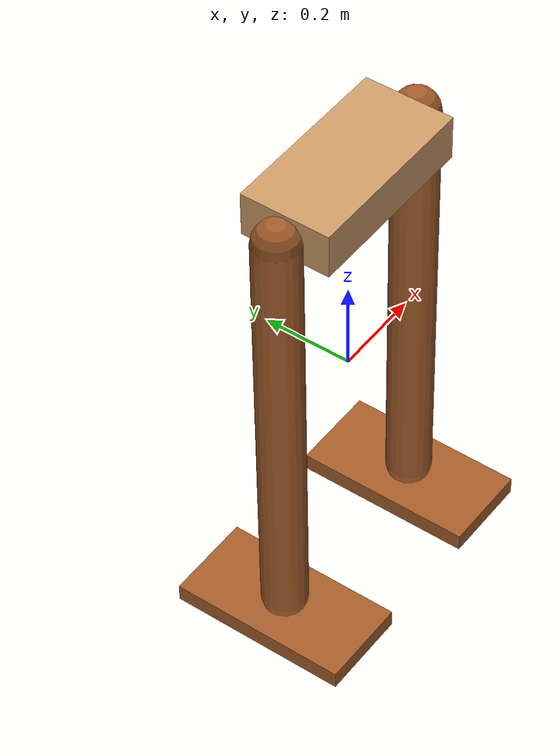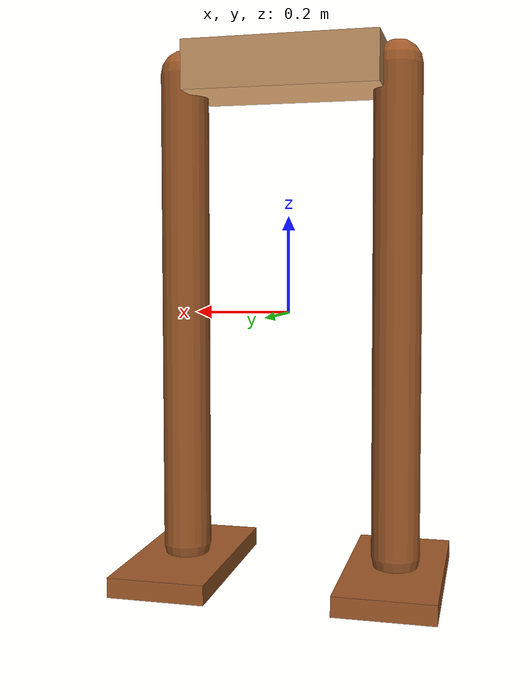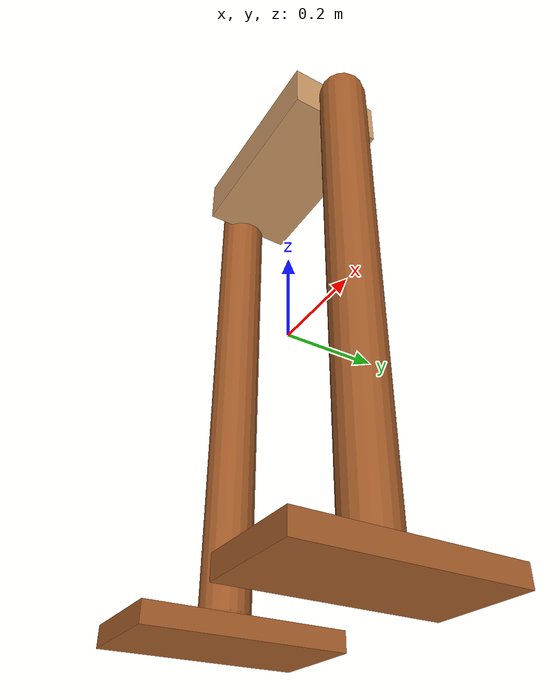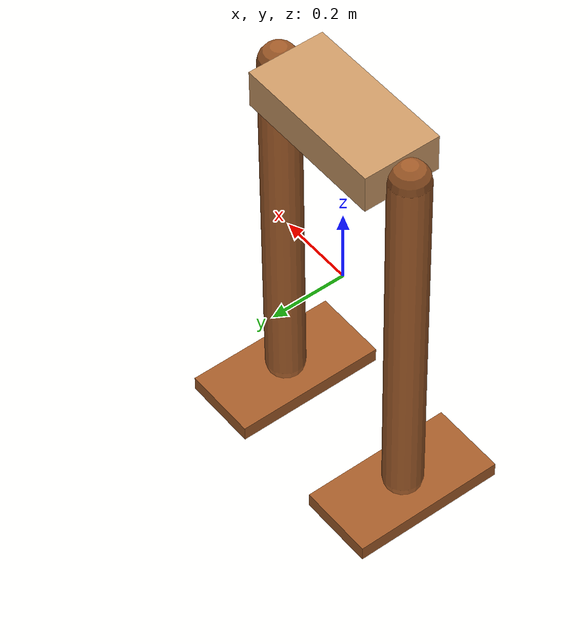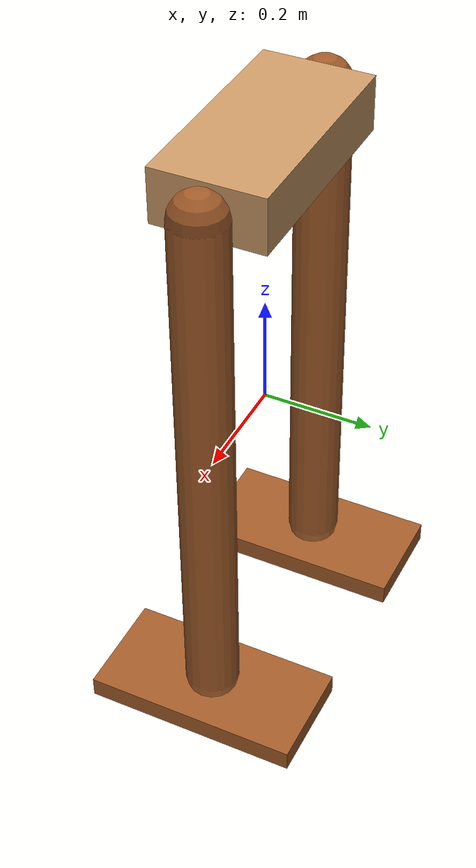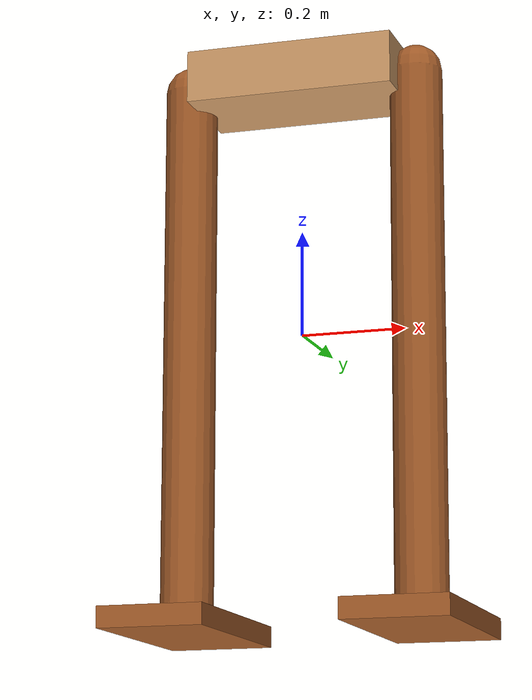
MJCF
<mujoco model="frog">
    <compiler angle="degree"/>

    <default>
        <joint limited="true" damping="1" armature="0"/>
        <geom condim="1" material="matgeom"/>
        <motor ctrlrange="-.4 .4" ctrllimited="true"/>
    </default>

    <option timestep="0.005" iterations="50" tolerance="1e-10" solver="Newton" jacobian="dense" cone="pyramidal" gravity="0 0 0"/>

    <size nconmax="50" njmax="200" nstack="10000"/>

    <visual>
        <map force="0.1" zfar="30"/>
        <rgba haze="0.15 0.25 0.35 1"/>
        <quality shadowsize="2048"/>
        <global offwidth="800" offheight="800"/>
    </visual>

    <asset>
        <texture type="skybox" builtin="gradient" rgb1="0.3 0.5 0.7" rgb2="0 0 0" width="512" height="512"/>

        <texture name="texplane" type="2d" builtin="checker" rgb1=".2 .3 .4" rgb2=".1 0.15 0.2" width="512" height="512" mark="cross" markrgb=".8 .8 .8"/>

        <texture name="texgeom" type="cube" builtin="flat" mark="cross" width="127" height="1278"
            rgb1="0.8 0.6 0.4" rgb2="0.8 0.6 0.4" markrgb="1 1 1" random="0.01"/>

        <material name="matplane" reflectance="0.3" texture="texplane" texrepeat="1 1" texuniform="true"/>

        <material name="matgeom" texture="texgeom" texuniform="true" rgba="0.8 0.6 .4 1"/>
    </asset>

    <worldbody>
       <body name="frog">
            <freejoint/>
        <body name="central_body" pos="0 0 0.5">

            <geom type="box" size="0.2 0.1 0.05" rgba="0.8 0.6 0.4 1"/>

            <!-- First Leg -->
            <body name="left_leg" pos="0.225 0 0">
                <joint name="left_piston" type="slide" pos="0 0 -1" axis="0 0 1" range="0 0.5"/>
                <joint name="left_shoulder" type="hinge" pos="0.225 0 -0.5" axis="1 0 0" range="-30 30" limited="true" />
                <geom type="capsule" size="0.05 0.5" pos="0 0 -0.5"/>
                <body name="left_foot" pos="0.225 0 0">
                    <geom type="box" size="0.1 0.2 0.02" pos= "-0.225 0 -1.04" />
                    <joint name="left_ankle" type="hinge" pos="-0.225 0 -1.04" axis="1 0 0" range="-30 30" limited="true" />
                </body>
            </body>

            <!-- Second Leg -->
            <body name="right_leg" pos="-0.225 0 0">
                <joint name="right_piston" type="slide" pos="0 0 -1" axis="0 0 1" range="0 0.5"/>
                <joint name="right_shoulder" type="hinge" pos="-0.225 0 -0.5" axis="1 0 0" range="-30 30" limited="true" />
                <geom type="capsule" size="0.05 0.5" pos="0 0 -0.5"/>
                <body name="right_foot" pos="-0.225 0 0">
                    <geom type="box" size="0.1 0.2 0.02" pos= "0.225 0 -1.04" />
                    <joint name="right_ankle" type="hinge" pos="0.225 0 -1.04" axis="1 0 0" range="-30 30" limited="true" />
                </body>
            </body>
        </body>
        </body>
    </worldbody>

<actuator>
     <motor name="left piston" joint="left_piston" gear="100"/>
        <motor name ="right piston" joint="right_piston" gear="100"/>

        <motor name="left shoulder" joint="left_shoulder" gear="100"/>
        <motor name="right shoulder" joint="right_shoulder" gear="100"/>
   <motor name="left ankle" joint="left_ankle" gear="100"/>
</actuator>
</mujoco>
